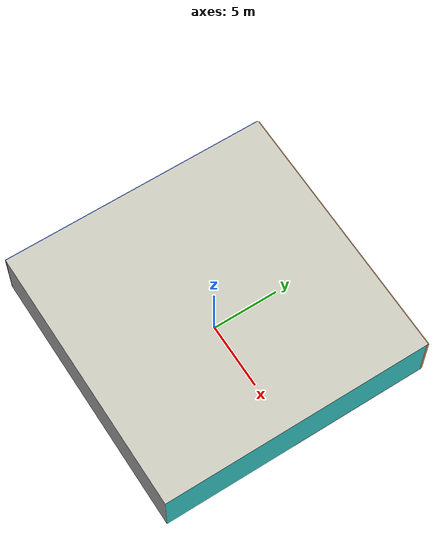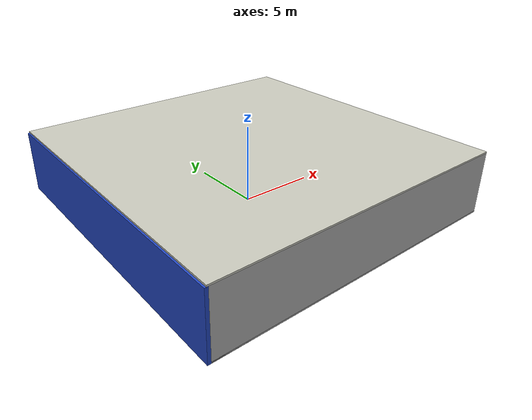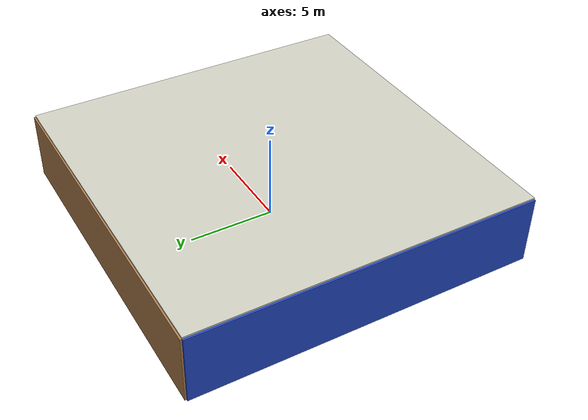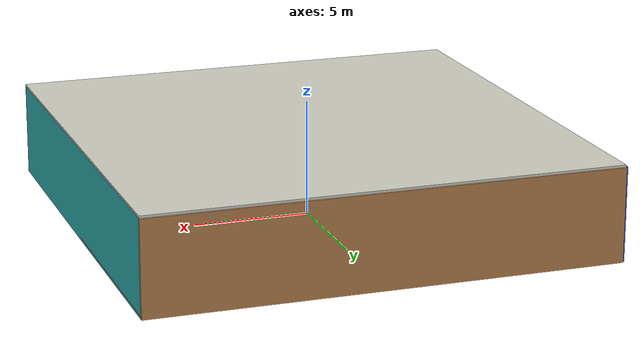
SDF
<sdf version="1.4">
 <world name="default">
  <physics type="ode">
   <max_step_size>0.001</max_step_size>
   <real_time_factor>1</real_time_factor>
   <real_time_update_rate>1000</real_time_update_rate>
   <gravity>0 0 -9.8</gravity>
  </physics>
  <scene><ambient>0.4 0.4 0.4 1</ambient><background>0.7 0.7 0.7 1</background><shadows>1</shadows></scene>
  <model name="Surrounding">
   <static>1</static>
   <link name="Ceiling">
    <collision name="Ceiling_Collision"><geometry><box><size>20 20 0.1</size></box></geometry></collision>
    <visual name="Ceiling_Visual">
     <geometry><box><size>20 20 0.1</size></box></geometry>
     <material>
      <script><uri>file://media/materials/scripts/gazebo.material</uri><name>Gazebo/PaintedWall</name></script>
     </material>
    </visual>
    <pose>0 0 4.05 0 0 0</pose>
   </link>
   <link name="Wall_South">
    <collision name="Wall_South_Collision">
     <geometry><box><size>20 0 4</size></box></geometry>
     <pose>0 0 2 0 -0 0</pose>
    </collision>
    <visual name="Wall_South_Visual">
     <pose>0 0 2 0 -0 0</pose>
     <geometry><box><size>20 0 4</size></box></geometry>
     <material>
      <script><uri>file://media/materials/scripts/gazebo.material</uri><name>Gazebo/JointAnchor</name></script>
     </material>
    </visual>
    <velocity_decay><linear>0</linear><angular>0</angular></velocity_decay>
    <pose>0 -10 0 0 -0 0</pose>
   </link>
   <link name="Wall_East">
    <collision name="Wall_21_Collision">
     <geometry><box><size>20 0 4</size></box></geometry>
     <pose>0 0 2 0 -0 0</pose>
    </collision>
    <visual name="Wall_21_Visual">
     <pose>0 0 2 0 -0 0</pose>
     <geometry><box><size>20 0 4</size></box></geometry>
     <material>
      <script><uri>file://media/materials/scripts/gazebo.material</uri><name>Gazebo/Turquoise</name></script>
     </material>
    </visual>
    <velocity_decay><linear>0</linear><angular>0</angular></velocity_decay>
    <pose>10 0 0 0 -0 1.5708</pose>
   </link>
   <link name="Wall_North">
    <collision name="Wall_22_Collision">
     <geometry><box><size>20 0.2 4</size></box></geometry>
     <pose>0 0 2 0 -0 0</pose>
    </collision>
    <visual name="Wall_22_Visual">
     <pose>0 0 2 0 -0 0</pose>
     <geometry><box><size>20 0.2 4</size></box></geometry>
     <material>
      <script><uri>file://media/materials/scripts/gazebo.material</uri><name>Gazebo/Wood</name></script>
     </material>
    </visual>
    <velocity_decay><linear>0</linear><angular>0</angular></velocity_decay>
    <pose>0 10 0 0 -0 0</pose>
   </link>
   <link name="Wall_West">
    <collision name="Wall_23_Collision">
     <geometry><box><size>20 0.2 4</size></box></geometry>
     <pose>0 0 2 0 -0 0</pose>
    </collision>
    <visual name="Wall_23_Visual">
     <pose>0 0 2 0 -0 0</pose>
     <geometry><box><size>20 0.2 4</size></box></geometry>
     <material>
      <script><uri>file://media/materials/scripts/gazebo.material</uri><name>Gazebo/Blue</name></script>
     </material>
    </visual>
    <velocity_decay><linear>0</linear><angular>0</angular></velocity_decay>
    <pose>-10 0 0 0 0 -1.5708</pose>
   </link>
   <link name="Ground_link">
    <collision name="collision">
     <pose>0 0 .05 0 -0 0</pose>
     <geometry><box><size>20 20 0.1</size></box></geometry>
    </collision>
    <visual name="visual">
     <pose>0 0 .05 0 -0 0</pose>
     <geometry><box><size>20 20 0.1</size></box></geometry>
     <material>
      <script><uri>file://media/materials/scripts/gazebo.material</uri><name>Gazebo/GreyTransparent</name></script>
     </material>
    </visual>
   </link>
   <static>1</static>
  </model>
  <spherical_coordinates>
   <surface_model>EARTH_WGS84</surface_model>
   <latitude_deg>0</latitude_deg>
   <longitude_deg>0</longitude_deg>
   <elevation>0</elevation>
   <heading_deg>0</heading_deg>
  </spherical_coordinates>
  <light name="lightball_0" type="diffuse">
   <diffuse>0.8 0.8 0.8 1</diffuse>
   <specular>0.2 0.2 0.2 1</specular>
   <attenuation>
    <range>100</range>
    <constant>0.7</constant>
    <linear>0.01</linear>
    <quadratic>0.001</quadratic>
   </attenuation>
   <direction>-0.5 0.1 -0.9</direction>
   <pose>-5.29748029499 5.69991107957 1.19676761813 0 0 0</pose>
  </light>
  <light name="lightball_1" type="diffuse">
   <diffuse>0.8 0.8 0.8 1</diffuse>
   <specular>0.2 0.2 0.2 1</specular>
   <attenuation>
    <range>100</range>
    <constant>0.7</constant>
    <linear>0.01</linear>
    <quadratic>0.001</quadratic>
   </attenuation>
   <direction>-0.5 0.1 -0.9</direction>
   <pose>5.11776039627 4.37624518877 2.60825018776 0 0 0</pose>
  </light>
  <light name="lightball_2" type="diffuse">
   <diffuse>0.8 0.8 0.8 1</diffuse>
   <specular>0.2 0.2 0.2 1</specular>
   <attenuation>
    <range>100</range>
    <constant>0.7</constant>
    <linear>0.01</linear>
    <quadratic>0.001</quadratic>
   </attenuation>
   <direction>-0.5 0.1 -0.9</direction>
   <pose>-5.4291396205 5.48068150934 3.87335985557 0 0 0</pose>
  </light>
  <light name="lightball_3" type="diffuse">
   <diffuse>0.8 0.8 0.8 1</diffuse>
   <specular>0.2 0.2 0.2 1</specular>
   <attenuation>
    <range>100</range>
    <constant>0.7</constant>
    <linear>0.01</linear>
    <quadratic>0.001</quadratic>
   </attenuation>
   <direction>-0.5 0.1 -0.9</direction>
   <pose>-3.38749951147 -7.05702911239 0.69094353762 0 0 0</pose>
  </light>
  <light name="lightball_4" type="diffuse">
   <diffuse>0.8 0.8 0.8 1</diffuse>
   <specular>0.2 0.2 0.2 1</specular>
   <attenuation>
    <range>100</range>
    <constant>0.7</constant>
    <linear>0.01</linear>
    <quadratic>0.001</quadratic>
   </attenuation>
   <direction>-0.5 0.1 -0.9</direction>
   <pose>-9.2237007585 -2.63731412769 2.9973497839 0 0 0</pose>
  </light>
  <light name="lightball_5" type="diffuse">
   <diffuse>0.8 0.8 0.8 1</diffuse>
   <specular>0.2 0.2 0.2 1</specular>
   <attenuation>
    <range>100</range>
    <constant>0.7</constant>
    <linear>0.01</linear>
    <quadratic>0.001</quadratic>
   </attenuation>
   <direction>-0.5 0.1 -0.9</direction>
   <pose>-5.65612766151 -2.05034132112 2.7732376055 0 0 0</pose>
  </light>
  <light name="lightball_6" type="diffuse">
   <diffuse>0.8 0.8 0.8 1</diffuse>
   <specular>0.2 0.2 0.2 1</specular>
   <attenuation>
    <range>100</range>
    <constant>0.7</constant>
    <linear>0.01</linear>
    <quadratic>0.001</quadratic>
   </attenuation>
   <direction>-0.5 0.1 -0.9</direction>
   <pose>-5.42780826558 8.2096182978 2.97241979199 0 0 0</pose>
  </light>
  <light name="lightball_7" type="diffuse">
   <diffuse>0.8 0.8 0.8 1</diffuse>
   <specular>0.2 0.2 0.2 1</specular>
   <attenuation>
    <range>100</range>
    <constant>0.7</constant>
    <linear>0.01</linear>
    <quadratic>0.001</quadratic>
   </attenuation>
   <direction>-0.5 0.1 -0.9</direction>
   <pose>-8.96908071426 0.36036716046 0.740622813172 0 0 0</pose>
  </light>
  <light name="lightball_8" type="diffuse">
   <diffuse>0.8 0.8 0.8 1</diffuse>
   <specular>0.2 0.2 0.2 1</specular>
   <attenuation>
    <range>100</range>
    <constant>0.7</constant>
    <linear>0.01</linear>
    <quadratic>0.001</quadratic>
   </attenuation>
   <direction>-0.5 0.1 -0.9</direction>
   <pose>-9.27174420353 -2.75607523368 2.48448692299 0 0 0</pose>
  </light>
  <light name="lightball_9" type="diffuse">
   <diffuse>0.8 0.8 0.8 1</diffuse>
   <specular>0.2 0.2 0.2 1</specular>
   <attenuation>
    <range>100</range>
    <constant>0.7</constant>
    <linear>0.01</linear>
    <quadratic>0.001</quadratic>
   </attenuation>
   <direction>-0.5 0.1 -0.9</direction>
   <pose>9.73988587972 -7.75495191129 3.4172201193 0 0 0</pose>
  </light>
  <light name="lightball_10" type="diffuse">
   <diffuse>0.8 0.8 0.8 1</diffuse>
   <specular>0.2 0.2 0.2 1</specular>
   <attenuation>
    <range>100</range>
    <constant>0.7</constant>
    <linear>0.01</linear>
    <quadratic>0.001</quadratic>
   </attenuation>
   <direction>-0.5 0.1 -0.9</direction>
   <pose>5.67516827194 6.75179316437 2.72498969182 0 0 0</pose>
  </light>
  <include><uri>model://table</uri><pose>-0.895069852297 -7.77928935883 0 0 0 1.86927255001</pose></include>
  <include>
   <uri>model://textured_shapes</uri>
   <pose>-1.57640057398 6.91454249996 0 0 0 0.866296751186</pose>
  </include>
  <include>
   <uri>model://construction_cone</uri>
   <pose>7.68050584416 -3.97341681168 0 0 0 2.9878991497</pose>
  </include>
 </world>
</sdf>

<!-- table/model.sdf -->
<sdf version="1.5">
  <model name="table">
    <static>true</static>
    <link name="link">
      <collision name="surface">
        <pose>0 0 1.0 0 0 0</pose>
        <geometry>
          <box>
            <size>1.5 0.8 0.03</size>
          </box>
        </geometry>
        <surface>
          <friction>
            <ode>
              <mu>0.6</mu>
              <mu2>0.6</mu2>
            </ode>
          </friction>
        </surface>
      </collision>
      <visual name="visual1">
        <pose>0 0 1.0 0 0 0</pose>
        <geometry>
          <box>
            <size>1.5 0.8 0.03</size>
          </box>
        </geometry>
        <material>
          <script>
            <uri>model://media/materials/scripts/gazebo.material</uri>
            <name>Gazebo/Wood</name>
          </script>
        </material>
      </visual>
      <collision name="front_left_leg">
        <pose>0.68 0.38 0.5 0 0 0</pose>
        <geometry>
          <cylinder>
            <radius>0.02</radius>
            <length>1.0</length>
          </cylinder>
        </geometry>
      </collision>
      <visual name="front_left_leg">
        <pose>0.68 0.38 0.5 0 0 0</pose>
        <geometry>
          <cylinder>
            <radius>0.02</radius>
            <length>1.0</length>
          </cylinder>
        </geometry>
        <material>
          <script>
            <uri>model://media/materials/scripts/gazebo.material</uri>
            <name>Gazebo/Grey</name>
          </script>
        </material>
      </visual>
      <collision name="front_right_leg">
        <pose>0.68 -0.38 0.5 0 0 0</pose>
        <geometry>
          <cylinder>
            <radius>0.02</radius>
            <length>1.0</length>
          </cylinder>
        </geometry>
      </collision>
      <visual name="front_right_leg">
        <pose>0.68 -0.38 0.5 0 0 0</pose>
        <geometry>
          <cylinder>
            <radius>0.02</radius>
            <length>1.0</length>
          </cylinder>
        </geometry>
        <material>
          <script>
            <uri>model://media/materials/scripts/gazebo.material</uri>
            <name>Gazebo/Grey</name>
          </script>
        </material>
      </visual>
      <collision name="back_right_leg">
        <pose>-0.68 -0.38 0.5 0 0 0</pose>
        <geometry>
          <cylinder>
            <radius>0.02</radius>
            <length>1.0</length>
          </cylinder>
        </geometry>
      </collision>
      <visual name="back_right_leg">
        <pose>-0.68 -0.38 0.5 0 0 0</pose>
        <geometry>
          <cylinder>
            <radius>0.02</radius>
            <length>1.0</length>
          </cylinder>
        </geometry>
        <material>
          <script>
            <uri>model://media/materials/scripts/gazebo.material</uri>
            <name>Gazebo/Grey</name>
          </script>
        </material>
      </visual>
      <collision name="back_left_leg">
        <pose>-0.68 0.38 0.5 0 0 0</pose>
        <geometry>
          <cylinder>
            <radius>0.02</radius>
            <length>1.0</length>
          </cylinder>
        </geometry>
      </collision>
      <visual name="back_left_leg">
        <pose>-0.68 0.38 0.5 0 0 0</pose>
        <geometry>
          <cylinder>
            <radius>0.02</radius>
            <length>1.0</length>
          </cylinder>
        </geometry>
        <material>
          <script>
            <uri>model://media/materials/scripts/gazebo.material</uri>
            <name>Gazebo/Grey</name>
          </script>
        </material>
      </visual>
    </link>
  </model>
</sdf>

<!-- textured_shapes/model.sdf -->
<sdf version="1.6">
  <model name="textured_shapes">
    <pose>0 0 0.5 0 0 0</pose>
    <link name="box">
      <pose>0 -1.5 0 0 0 0</pose>
      <collision name="collision">
        <geometry>
          <box>
            <size>1 1 1</size>
          </box>
        </geometry>
      </collision>
      <visual name="visual">
        <geometry>
          <box>
            <size>1 1 1</size>
          </box>
        </geometry>
        <material>
          <script>
            <uri>model://../model_source/models/textured_shapes/materials/scripts</uri>
            <uri>model://../model_source/models/textured_shapes/materials/textures</uri>
            <name>TexturedShape/Squares</name>
          </script>
        </material>
      </visual>
    </link>
    <link name="sphere">
      <collision name="collision">
        <geometry>
          <sphere>
            <radius>0.5</radius>
          </sphere>
        </geometry>
      </collision>
      <visual name="visual">
        <geometry>
          <sphere>
            <radius>0.5</radius>
          </sphere>
        </geometry>
        <material>
          <script>
            <uri>model://../model_source/models/textured_shapes/materials/scripts</uri>
            <uri>model://../model_source/models/textured_shapes/materials/textures</uri>
            <name>TexturedShape/Squares</name>
          </script>
        </material>
      </visual>
    </link>
    <link name="cylinder">
      <pose>0 1.5 0 0 0 0</pose>
      <collision name="collision">
        <geometry>
          <cylinder>
            <radius>0.5</radius>
            <length>1</length>
          </cylinder>
        </geometry>
      </collision>
      <visual name="visual">
        <geometry>
          <cylinder>
            <radius>0.5</radius>
            <length>1</length>
          </cylinder>
        </geometry>
        <material>
          <script>
            <uri>model://../model_source/models/textured_shapes/materials/scripts</uri>
            <uri>model://../model_source/models/textured_shapes/materials/textures</uri>
            <name>TexturedShape/Squares</name>
          </script>
        </material>
      </visual>
    </link>
  </model>
</sdf>

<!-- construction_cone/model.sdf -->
<sdf version="1.5">
  <model name="Construction Cone">
    <link name="link">
      <collision name="collision">
        <geometry>
          <mesh>
            <scale>10 10 10</scale>
            <uri>file://isr-testbed/construction_cone/meshes/construction_cone.dae</uri>
          </mesh>
        </geometry>
      </collision>
      <visual name="visual">
        <geometry>
          <mesh>
            <scale>10 10 10</scale>
            <uri>file://isr-testbed/construction_cone/meshes/construction_cone.dae</uri>
          </mesh>
        </geometry>
      </visual>
    </link>
  </model>
</sdf>
